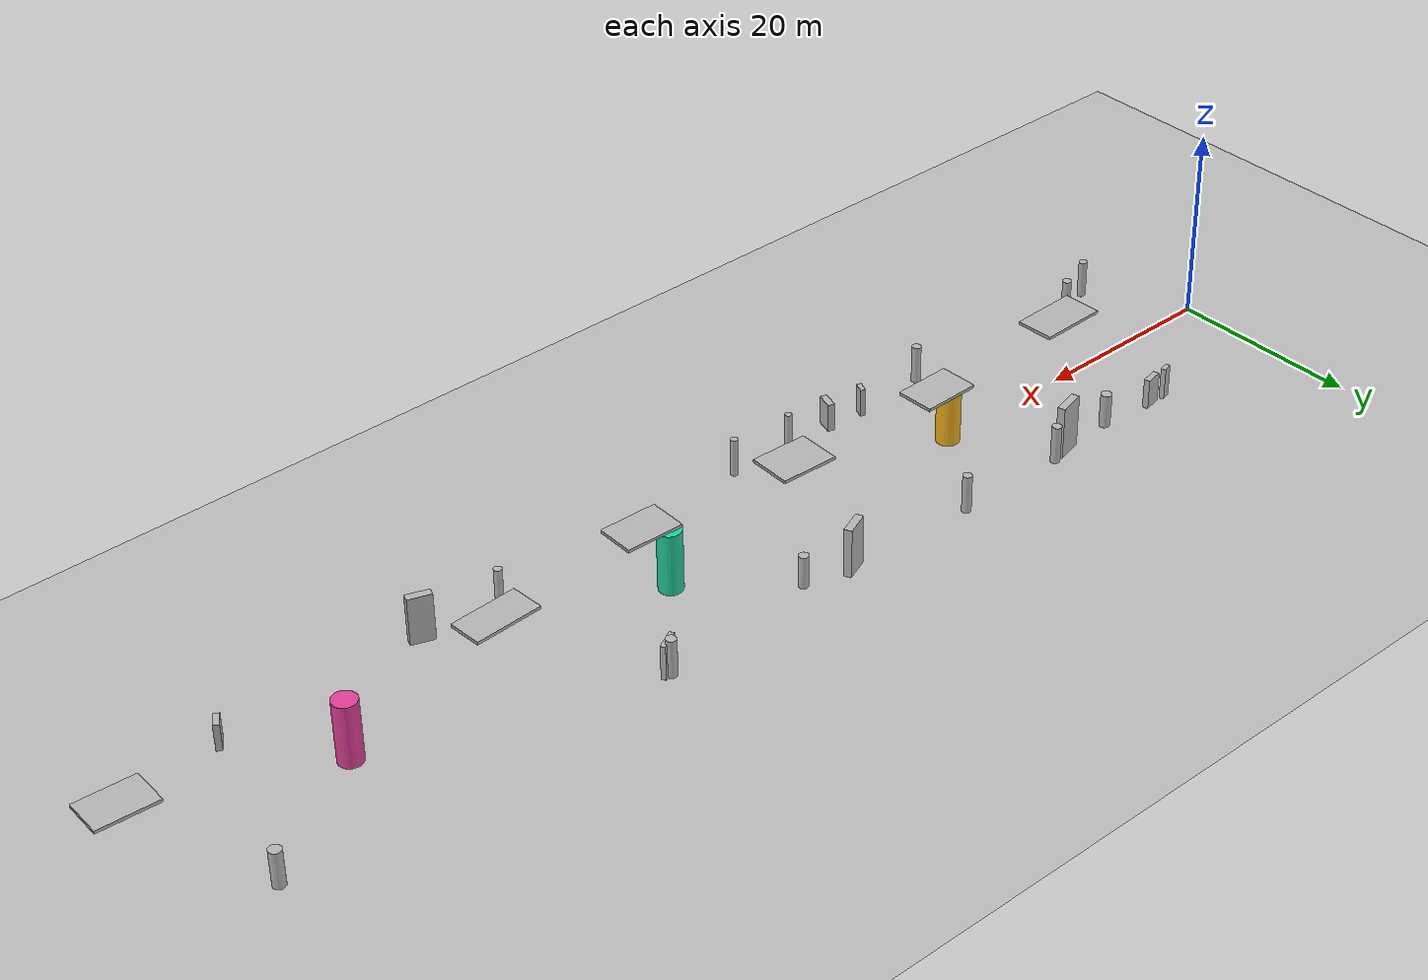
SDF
<sdf version="1.9">
 <world name="long_three_pillars_speed">
  <physics type="ode">
   <max_step_size>0.004</max_step_size>
   <real_time_factor>0.8</real_time_factor>
   <real_time_update_rate>200</real_time_update_rate>
  </physics>
  <gravity>0 0 -9.8</gravity>
  <scene>
   <grid>true</grid>
   <ambient>0.4 0.4 0.4 1</ambient>
   <background>0.72 0.78 0.85 1</background>
   <shadows>true</shadows>
  </scene>
  <model name="ground_plane">
   <static>true</static>
   <link name="link">
    <collision name="collision">
     <geometry><plane><normal>0 0 1</normal><size>260 60</size></plane></geometry>
    </collision>
    <visual name="visual">
     <geometry><plane><normal>0 0 1</normal><size>260 60</size></plane></geometry>
     <material><ambient>0.75 0.75 0.75 1</ambient><diffuse>0.75 0.75 0.75 1</diffuse></material>
    </visual>
   </link>
  </model>
  <model name="long_three_speed_pillar_01">
   <static>true</static>
   <pose>35.0 0.0 3.25 0 0 0</pose>
   <link name="link">
    <collision name="collision">
     <geometry><cylinder><radius>1.20</radius><length>6.50</length></cylinder></geometry>
    </collision>
    <visual name="visual">
     <geometry><cylinder><radius>1.20</radius><length>6.50</length></cylinder></geometry>
     <material><ambient>0.85 0.55 0.08 1</ambient><diffuse>0.95 0.70 0.10 1</diffuse></material>
    </visual>
   </link>
  </model>
  <model name="long_three_speed_pillar_02">
   <static>true</static>
   <pose>70.0 0.0 3.25 0 0 0.14</pose>
   <link name="link">
    <collision name="collision">
     <geometry><cylinder><radius>1.20</radius><length>6.50</length></cylinder></geometry>
    </collision>
    <visual name="visual">
     <geometry><cylinder><radius>1.20</radius><length>6.50</length></cylinder></geometry>
     <material><ambient>0.10 0.65 0.50 1</ambient><diffuse>0.12 0.82 0.62 1</diffuse></material>
    </visual>
   </link>
  </model>
  <model name="long_three_speed_pillar_03">
   <static>true</static>
   <pose>105.0 0.0 3.25 0 0 -0.14</pose>
   <link name="link">
    <collision name="collision">
     <geometry><cylinder><radius>1.20</radius><length>6.50</length></cylinder></geometry>
    </collision>
    <visual name="visual">
     <geometry><cylinder><radius>1.20</radius><length>6.50</length></cylinder></geometry>
     <material><ambient>0.75 0.20 0.48 1</ambient><diffuse>0.90 0.25 0.60 1</diffuse></material>
    </visual>
   </link>
  </model>
  <model name="speed_feature_tree_01">
   <static>true</static>
   <pose>10.0 -8.0 2.0 0 0 0.1</pose>
   <link name="link">
    <collision name="collision">
     <geometry><cylinder><radius>0.45</radius><length>4.0</length></cylinder></geometry>
    </collision>
    <visual name="visual">
     <geometry><cylinder><radius>0.45</radius><length>4.0</length></cylinder></geometry>
    </visual>
   </link>
  </model>
  <model name="speed_feature_tree_02">
   <static>true</static>
   <pose>22.0 8.5 1.8 0 0 -0.2</pose>
   <link name="link">
    <collision name="collision">
     <geometry><cylinder><radius>0.55</radius><length>3.6</length></cylinder></geometry>
    </collision>
    <visual name="visual">
     <geometry><cylinder><radius>0.55</radius><length>3.6</length></cylinder></geometry>
    </visual>
   </link>
  </model>
  <model name="speed_feature_tree_03">
   <static>true</static>
   <pose>48.0 -8.5 2.3 0 0 0.3</pose>
   <link name="link">
    <collision name="collision">
     <geometry><cylinder><radius>0.35</radius><length>4.6</length></cylinder></geometry>
    </collision>
    <visual name="visual">
     <geometry><cylinder><radius>0.35</radius><length>4.6</length></cylinder></geometry>
    </visual>
   </link>
  </model>
  <model name="speed_feature_tree_04">
   <static>true</static>
   <pose>61.0 7.8 1.7 0 0 -0.4</pose>
   <link name="link">
    <collision name="collision">
     <geometry><cylinder><radius>0.50</radius><length>3.4</length></cylinder></geometry>
    </collision>
    <visual name="visual">
     <geometry><cylinder><radius>0.50</radius><length>3.4</length></cylinder></geometry>
    </visual>
   </link>
  </model>
  <model name="speed_feature_tree_05">
   <static>true</static>
   <pose>83.0 -8.2 2.1 0 0 0.5</pose>
   <link name="link">
    <collision name="collision">
     <geometry><cylinder><radius>0.40</radius><length>4.2</length></cylinder></geometry>
    </collision>
    <visual name="visual">
     <geometry><cylinder><radius>0.40</radius><length>4.2</length></cylinder></geometry>
    </visual>
   </link>
  </model>
  <model name="speed_feature_tree_06">
   <static>true</static>
   <pose>118.0 8.6 1.9 0 0 -0.6</pose>
   <link name="link">
    <collision name="collision">
     <geometry><cylinder><radius>0.60</radius><length>3.8</length></cylinder></geometry>
    </collision>
    <visual name="visual">
     <geometry><cylinder><radius>0.60</radius><length>3.8</length></cylinder></geometry>
    </visual>
   </link>
  </model>
  <model name="speed_feature_tree_07">
   <static>true</static>
   <pose>6.0 -9.5 2.0 0 0 0.15</pose>
   <link name="link">
    <collision name="collision">
     <geometry><cylinder><radius>0.42</radius><length>4.0</length></cylinder></geometry>
    </collision>
    <visual name="visual">
     <geometry><cylinder><radius>0.42</radius><length>4.0</length></cylinder></geometry>
    </visual>
   </link>
  </model>
  <model name="speed_feature_tree_08">
   <static>true</static>
   <pose>30.0 9.5 2.0 0 0 -0.25</pose>
   <link name="link">
    <collision name="collision">
     <geometry><cylinder><radius>0.48</radius><length>4.0</length></cylinder></geometry>
    </collision>
    <visual name="visual">
     <geometry><cylinder><radius>0.48</radius><length>4.0</length></cylinder></geometry>
    </visual>
   </link>
  </model>
  <model name="speed_feature_tree_09">
   <static>true</static>
   <pose>54.0 -9.5 2.0 0 0 0.35</pose>
   <link name="link">
    <collision name="collision">
     <geometry><cylinder><radius>0.38</radius><length>4.0</length></cylinder></geometry>
    </collision>
    <visual name="visual">
     <geometry><cylinder><radius>0.38</radius><length>4.0</length></cylinder></geometry>
    </visual>
   </link>
  </model>
  <model name="speed_feature_tree_10">
   <static>true</static>
   <pose>78.0 9.5 2.0 0 0 -0.45</pose>
   <link name="link">
    <collision name="collision">
     <geometry><cylinder><radius>0.52</radius><length>4.0</length></cylinder></geometry>
    </collision>
    <visual name="visual">
     <geometry><cylinder><radius>0.52</radius><length>4.0</length></cylinder></geometry>
    </visual>
   </link>
  </model>
  <model name="speed_feature_tree_13">
   <static>true</static>
   <pose>30.0 -9.5 2.0 0 0 0.45</pose>
   <link name="link">
    <collision name="collision">
     <geometry><cylinder><radius>0.46</radius><length>4.0</length></cylinder></geometry>
    </collision>
    <visual name="visual">
     <geometry><cylinder><radius>0.46</radius><length>4.0</length></cylinder></geometry>
    </visual>
   </link>
  </model>
  <model name="speed_feature_tree_14">
   <static>true</static>
   <pose>42.0 9.5 2.0 0 0 -0.55</pose>
   <link name="link">
    <collision name="collision">
     <geometry><cylinder><radius>0.46</radius><length>4.0</length></cylinder></geometry>
    </collision>
    <visual name="visual">
     <geometry><cylinder><radius>0.46</radius><length>4.0</length></cylinder></geometry>
    </visual>
   </link>
  </model>
  <model name="speed_feature_panel_01">
   <static>true</static>
   <pose>16.0 9.0 1.6 0 0 0.2</pose>
   <link name="link">
    <collision name="collision"><geometry><box><size>1.8 0.6 3.2</size></box></geometry></collision>
    <visual name="visual"><geometry><box><size>1.8 0.6 3.2</size></box></geometry></visual>
   </link>
  </model>
  <model name="speed_feature_panel_02">
   <static>true</static>
   <pose>42.0 -9.5 1.5 0 0 -0.3</pose>
   <link name="link">
    <collision name="collision"><geometry><box><size>0.7 1.8 3.0</size></box></geometry></collision>
    <visual name="visual"><geometry><box><size>0.7 1.8 3.0</size></box></geometry></visual>
   </link>
  </model>
  <model name="speed_feature_panel_03">
   <static>true</static>
   <pose>78.0 9.0 1.8 0 0 0.5</pose>
   <link name="link">
    <collision name="collision"><geometry><box><size>2.2 0.5 3.6</size></box></geometry></collision>
    <visual name="visual"><geometry><box><size>2.2 0.5 3.6</size></box></geometry></visual>
   </link>
  </model>
  <model name="speed_feature_panel_04">
   <static>true</static>
   <pose>112.0 -9.0 1.4 0 0 -0.6</pose>
   <link name="link">
    <collision name="collision"><geometry><box><size>0.6 1.6 2.8</size></box></geometry></collision>
    <visual name="visual"><geometry><box><size>0.6 1.6 2.8</size></box></geometry></visual>
   </link>
  </model>
  <model name="speed_feature_panel_05">
   <static>true</static>
   <pose>14.0 9.0 1.7 0 0 0.3</pose>
   <link name="link">
    <collision name="collision"><geometry><box><size>1.0 0.5 3.4</size></box></geometry></collision>
    <visual name="visual"><geometry><box><size>1.0 0.5 3.4</size></box></geometry></visual>
   </link>
  </model>
  <model name="speed_feature_panel_06">
   <static>true</static>
   <pose>38.0 -9.0 1.5 0 0 -0.4</pose>
   <link name="link">
    <collision name="collision"><geometry><box><size>0.5 1.2 3.0</size></box></geometry></collision>
    <visual name="visual"><geometry><box><size>0.5 1.2 3.0</size></box></geometry></visual>
   </link>
  </model>
  <model name="speed_feature_corner_01">
   <static>true</static>
   <pose>28.0 9.0 2.8 0 0 0.25</pose>
   <link name="link">
    <collision name="collision"><geometry><box><size>2.8 0.8 5.6</size></box></geometry></collision>
    <visual name="visual"><geometry><box><size>2.8 0.8 5.6</size></box></geometry></visual>
   </link>
  </model>
  <model name="speed_feature_corner_02">
   <static>true</static>
   <pose>91.0 -9.0 2.5 0 0 -0.35</pose>
   <link name="link">
    <collision name="collision"><geometry><box><size>2.4 0.8 5.0</size></box></geometry></collision>
    <visual name="visual"><geometry><box><size>2.4 0.8 5.0</size></box></geometry></visual>
   </link>
  </model>
  <model name="speed_feature_corner_03">
   <static>true</static>
   <pose>56.0 9.0 2.6 0 0 0.4</pose>
   <link name="link">
    <collision name="collision"><geometry><box><size>2.6 0.8 5.2</size></box></geometry></collision>
    <visual name="visual"><geometry><box><size>2.6 0.8 5.2</size></box></geometry></visual>
   </link>
  </model>
  <model name="speed_feature_overhead_01">
   <static>true</static>
   <pose>20.0 0.0 7.5 0 0 0.03</pose>
   <link name="link">
    <collision name="collision"><geometry><box><size>7.0 4.0 0.30</size></box></geometry></collision>
    <visual name="visual"><geometry><box><size>7.0 4.0 0.30</size></box></geometry></visual>
   </link>
  </model>
  <model name="speed_feature_overhead_02">
   <static>true</static>
   <pose>55.0 0.0 7.0 0 0 -0.04</pose>
   <link name="link">
    <collision name="collision"><geometry><box><size>6.0 4.5 0.30</size></box></geometry></collision>
    <visual name="visual"><geometry><box><size>6.0 4.5 0.30</size></box></geometry></visual>
   </link>
  </model>
  <model name="speed_feature_overhead_03">
   <static>true</static>
   <pose>90.0 1.0 7.8 0 0 0.05</pose>
   <link name="link">
    <collision name="collision"><geometry><box><size>7.0 3.5 0.30</size></box></geometry></collision>
    <visual name="visual"><geometry><box><size>7.0 3.5 0.30</size></box></geometry></visual>
   </link>
  </model>
  <model name="speed_feature_overhead_04">
   <static>true</static>
   <pose>126.0 -0.8 7.2 0 0 -0.06</pose>
   <link name="link">
    <collision name="collision"><geometry><box><size>6.0 4.0 0.30</size></box></geometry></collision>
    <visual name="visual"><geometry><box><size>6.0 4.0 0.30</size></box></geometry></visual>
   </link>
  </model>
  <model name="speed_feature_overhead_05">
   <static>true</static>
   <pose>37.5 0.8 7.2 0 0 0.02</pose>
   <link name="link">
    <collision name="collision"><geometry><box><size>6.0 4.0 0.30</size></box></geometry></collision>
    <visual name="visual"><geometry><box><size>6.0 4.0 0.30</size></box></geometry></visual>
   </link>
  </model>
  <model name="speed_feature_overhead_06">
   <static>true</static>
   <pose>72.5 -0.8 7.4 0 0 -0.03</pose>
   <link name="link">
    <collision name="collision"><geometry><box><size>6.0 4.0 0.30</size></box></geometry></collision>
    <visual name="visual"><geometry><box><size>6.0 4.0 0.30</size></box></geometry></visual>
   </link>
  </model>
  <light name="sunUTC" type="directional">
   <pose>0 0 500 0 0 0</pose>
   <intensity>1</intensity>
   <direction>0.001 0.625 -0.78</direction>
  </light>
  <spherical_coordinates>
   <surface_model>EARTH_WGS84</surface_model>
   <world_frame_orientation>ENU</world_frame_orientation>
   <latitude_deg>10.8231</latitude_deg>
   <longitude_deg>106.6297</longitude_deg>
   <elevation>10</elevation>
  </spherical_coordinates>
 </world>
</sdf>
